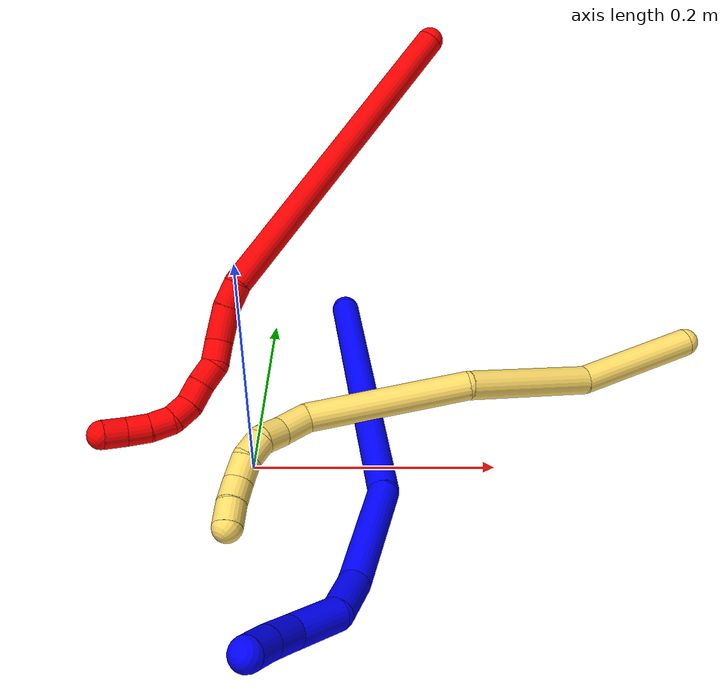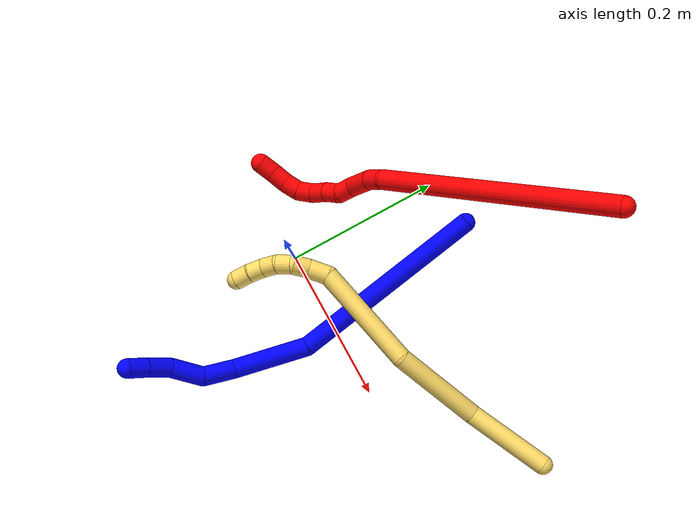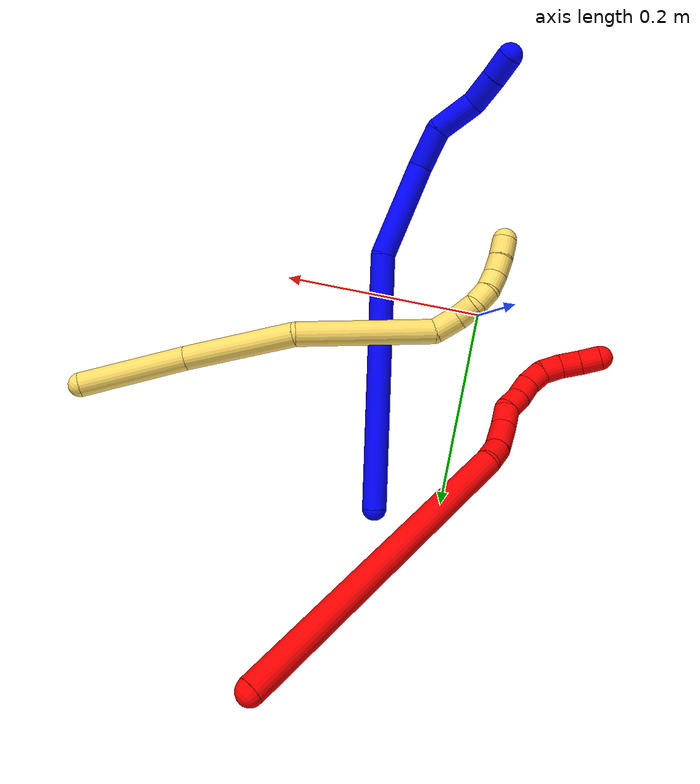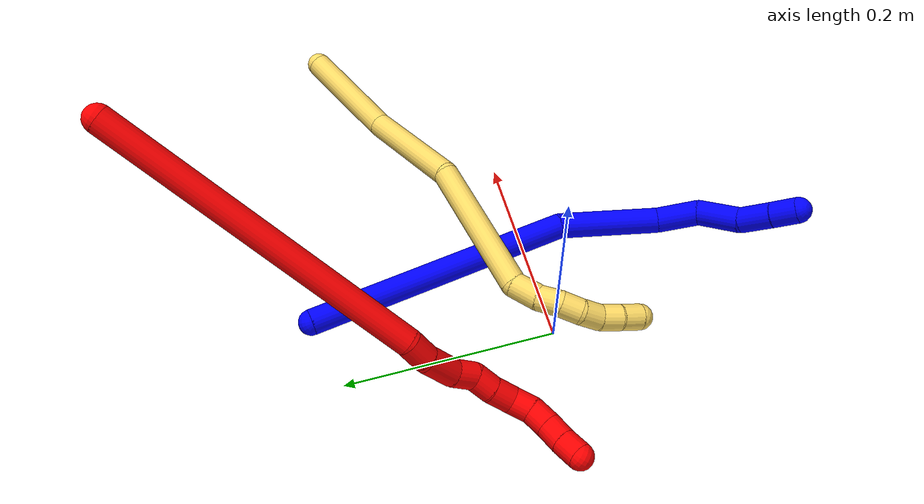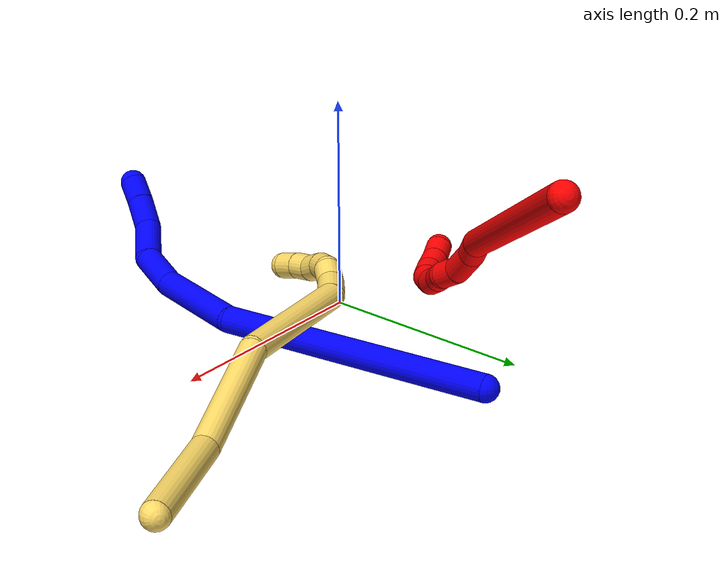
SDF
<sdf version="1.7">
 <world name="default">
  <model name="bin">
   <static>1</static>
   <link name="bottom">
    <collision name="collision-bottom">
     <pose>0 0 -0.01 0 -0 0</pose>
     <geometry><box><size>0.8 0.6 0.02</size></box></geometry>
     <surface>
      <friction><ode><mu>100</mu><mu2>100</mu2></ode></friction>
      <contact><collide_bitmask>65535</collide_bitmask></contact>
     </surface>
    </collision>
   </link>
   <link name="west_wall">
    <collision name="collision-west_wall">
     <pose>-0.41 0 0.1 0 -0 0</pose>
     <geometry><box><size>0.02 0.6 0.2</size></box></geometry>
     <surface>
      <friction><ode><mu>100</mu><mu2>100</mu2></ode></friction>
      <contact><collide_bitmask>65535</collide_bitmask></contact>
     </surface>
    </collision>
   </link>
   <link name="east_wall">
    <collision name="collision-east_wall">
     <pose>0.41 0 0.1 0 -0 0</pose>
     <geometry><box><size>0.02 0.6 0.2</size></box></geometry>
     <surface>
      <friction><ode><mu>100</mu><mu2>100</mu2></ode></friction>
      <contact><collide_bitmask>65535</collide_bitmask></contact>
     </surface>
    </collision>
   </link>
   <link name="south_wall">
    <collision name="collision-south_wall">
     <pose>0 -0.31 0.1 0 -0 0</pose>
     <geometry><box><size>0.8 0.02 0.2</size></box></geometry>
     <surface>
      <friction><ode><mu>100</mu><mu2>100</mu2></ode></friction>
      <contact><collide_bitmask>65535</collide_bitmask></contact>
     </surface>
    </collision>
   </link>
   <link name="north_wall">
    <collision name="collision-north_wall">
     <pose>0 0.31 0.1 0 -0 0</pose>
     <geometry><box><size>0.8 0.02 0.2</size></box></geometry>
     <surface>
      <friction><ode><mu>100</mu><mu2>100</mu2></ode></friction>
      <contact><collide_bitmask>65535</collide_bitmask></contact>
     </surface>
    </collision>
   </link>
  </model>
  <model name="1">
   <static>0</static>
   <link name="1">
    <collision name="collision-cylinder-e_1_1_4">
     <pose>0.028502 -0.117273 0.049514 1.17129 0.220272 0.14643</pose>
     <geometry><cylinder><radius>0.0125</radius><length>0.260898</length></cylinder></geometry>
     <surface>
      <friction><ode><mu>1.16</mu><mu2>1.16</mu2><slip1>0</slip1><slip2>0</slip2></ode></friction>
      <contact><ode><kp>1e+06</kp><kd>1</kd><max_vel>0</max_vel><min_depth>0.001</min_depth></ode></contact>
     </surface>
    </collision>
    <visual name="visual-cylinder-e_1_1_4">
     <pose>0.028502 -0.117273 0.049514 1.17129 0.220272 0.14643</pose>
     <geometry><cylinder><radius>0.0125</radius><length>0.260898</length></cylinder></geometry>
     <material><ambient>0 0 1 1</ambient></material>
    </visual>
    <collision name="collision-cylinder-e_2_4_5">
     <pose>0.052084 -0.27544 0.125671 0.993369 -0.10047 -0.054488</pose>
     <geometry><cylinder><radius>0.0125</radius><length>0.098111</length></cylinder></geometry>
     <surface>
      <friction><ode><mu>1.16</mu><mu2>1.16</mu2><slip1>0</slip1><slip2>0</slip2></ode></friction>
      <contact><ode><kp>1e+06</kp><kd>1</kd><max_vel>0</max_vel><min_depth>0.001</min_depth></ode></contact>
     </surface>
    </collision>
    <visual name="visual-cylinder-e_2_4_5">
     <pose>0.052084 -0.27544 0.125671 0.993369 -0.10047 -0.054488</pose>
     <geometry><cylinder><radius>0.0125</radius><length>0.098111</length></cylinder></geometry>
     <material><ambient>0 0 1 1</ambient></material>
    </visual>
    <collision name="collision-cylinder-e_3_5_6">
     <pose>0.04717 -0.329836 0.16795 0.712247 0.000265 9.9e-05</pose>
     <geometry><cylinder><radius>0.0125</radius><length>0.041316</length></cylinder></geometry>
     <surface>
      <friction><ode><mu>1.16</mu><mu2>1.16</mu2><slip1>0</slip1><slip2>0</slip2></ode></friction>
      <contact><ode><kp>1e+06</kp><kd>1</kd><max_vel>0</max_vel><min_depth>0.001</min_depth></ode></contact>
     </surface>
    </collision>
    <visual name="visual-cylinder-e_3_5_6">
     <pose>0.04717 -0.329836 0.16795 0.712247 0.000265 9.9e-05</pose>
     <geometry><cylinder><radius>0.0125</radius><length>0.041316</length></cylinder></geometry>
     <material><ambient>0 0 1 1</ambient></material>
    </visual>
    <collision name="collision-cylinder-e_4_6_7">
     <pose>0.039185 -0.350615 0.202302 0.370893 -0.378681 -0.071872</pose>
     <geometry><cylinder><radius>0.0125</radius><length>0.043225</length></cylinder></geometry>
     <surface>
      <friction><ode><mu>1.16</mu><mu2>1.16</mu2><slip1>0</slip1><slip2>0</slip2></ode></friction>
      <contact><ode><kp>1e+06</kp><kd>1</kd><max_vel>0</max_vel><min_depth>0.001</min_depth></ode></contact>
     </surface>
    </collision>
    <visual name="visual-cylinder-e_4_6_7">
     <pose>0.039185 -0.350615 0.202302 0.370893 -0.378681 -0.071872</pose>
     <geometry><cylinder><radius>0.0125</radius><length>0.043225</length></cylinder></geometry>
     <material><ambient>0 0 1 1</ambient></material>
    </visual>
    <collision name="collision-cylinder-e_5_7_8">
     <pose>0.030592 -0.363217 0.235863 0.344285 -0.038195 -0.006642</pose>
     <geometry><cylinder><radius>0.0125</radius><length>0.031564</length></cylinder></geometry>
     <surface>
      <friction><ode><mu>1.16</mu><mu2>1.16</mu2><slip1>0</slip1><slip2>0</slip2></ode></friction>
      <contact><ode><kp>1e+06</kp><kd>1</kd><max_vel>0</max_vel><min_depth>0.001</min_depth></ode></contact>
     </surface>
    </collision>
    <visual name="visual-cylinder-e_5_7_8">
     <pose>0.030592 -0.363217 0.235863 0.344285 -0.038195 -0.006642</pose>
     <geometry><cylinder><radius>0.0125</radius><length>0.031564</length></cylinder></geometry>
     <material><ambient>0 0 1 1</ambient></material>
    </visual>
    <collision name="collision-cylinder-e_6_8_2">
     <pose>0.029752 -0.373361 0.262176 0.397974 -0.019114 -0.003855</pose>
     <geometry><cylinder><radius>0.0125</radius><length>0.024885</length></cylinder></geometry>
     <surface>
      <friction><ode><mu>1.16</mu><mu2>1.16</mu2><slip1>0</slip1><slip2>0</slip2></ode></friction>
      <contact><ode><kp>1e+06</kp><kd>1</kd><max_vel>0</max_vel><min_depth>0.001</min_depth></ode></contact>
     </surface>
    </collision>
    <visual name="visual-cylinder-e_6_8_2">
     <pose>0.029752 -0.373361 0.262176 0.397974 -0.019114 -0.003855</pose>
     <geometry><cylinder><radius>0.0125</radius><length>0.024885</length></cylinder></geometry>
     <material><ambient>0 0 1 1</ambient></material>
    </visual>
    <collision name="collision-sphere-2">
     <pose>0.029514 -0.378182 0.273645 0 -0 0</pose>
     <geometry><sphere><radius>0.0125</radius></sphere></geometry>
     <surface>
      <friction><ode><mu>1.16</mu><mu2>1.16</mu2><slip1>0</slip1><slip2>0</slip2></ode></friction>
      <contact><ode><kp>1e+06</kp><kd>1</kd><max_vel>0</max_vel><min_depth>0.001</min_depth></ode></contact>
     </surface>
    </collision>
    <visual name="visual-sphere-2">
     <pose>0.029514 -0.378182 0.273645 0 -0 0</pose>
     <geometry><sphere><radius>0.0125</radius></sphere></geometry>
     <material><ambient>0 0 1 1</ambient></material>
    </visual>
    <collision name="collision-sphere-4">
     <pose>0.057005 -0.234545 0.099028 0 -0 0</pose>
     <geometry><sphere><radius>0.0125</radius></sphere></geometry>
     <surface>
      <friction><ode><mu>1.16</mu><mu2>1.16</mu2><slip1>0</slip1><slip2>0</slip2></ode></friction>
      <contact><ode><kp>1e+06</kp><kd>1</kd><max_vel>0</max_vel><min_depth>0.001</min_depth></ode></contact>
     </surface>
    </collision>
    <visual name="visual-sphere-4">
     <pose>0.057005 -0.234545 0.099028 0 -0 0</pose>
     <geometry><sphere><radius>0.0125</radius></sphere></geometry>
     <material><ambient>0 0 1 1</ambient></material>
    </visual>
    <collision name="collision-sphere-1">
     <geometry><sphere><radius>0.0125</radius></sphere></geometry>
     <surface>
      <friction><ode><mu>1.16</mu><mu2>1.16</mu2><slip1>0</slip1><slip2>0</slip2></ode></friction>
      <contact><ode><kp>1e+06</kp><kd>1</kd><max_vel>0</max_vel><min_depth>0.001</min_depth></ode></contact>
     </surface>
    </collision>
    <visual name="visual-sphere-1">
     <geometry><sphere><radius>0.0125</radius></sphere></geometry>
     <material><ambient>0 0 1 1</ambient></material>
    </visual>
    <collision name="collision-sphere-8">
     <pose>0.02999 -0.36854 0.250708 0 -0 0</pose>
     <geometry><sphere><radius>0.0125</radius></sphere></geometry>
     <surface>
      <friction><ode><mu>1.16</mu><mu2>1.16</mu2><slip1>0</slip1><slip2>0</slip2></ode></friction>
      <contact><ode><kp>1e+06</kp><kd>1</kd><max_vel>0</max_vel><min_depth>0.001</min_depth></ode></contact>
     </surface>
    </collision>
    <visual name="visual-sphere-8">
     <pose>0.02999 -0.36854 0.250708 0 -0 0</pose>
     <geometry><sphere><radius>0.0125</radius></sphere></geometry>
     <material><ambient>0 0 1 1</ambient></material>
    </visual>
    <collision name="collision-sphere-5">
     <pose>0.047164 -0.316335 0.152314 0 -0 0</pose>
     <geometry><sphere><radius>0.0125</radius></sphere></geometry>
     <surface>
      <friction><ode><mu>1.16</mu><mu2>1.16</mu2><slip1>0</slip1><slip2>0</slip2></ode></friction>
      <contact><ode><kp>1e+06</kp><kd>1</kd><max_vel>0</max_vel><min_depth>0.001</min_depth></ode></contact>
     </surface>
    </collision>
    <visual name="visual-sphere-5">
     <pose>0.047164 -0.316335 0.152314 0 -0 0</pose>
     <geometry><sphere><radius>0.0125</radius></sphere></geometry>
     <material><ambient>0 0 1 1</ambient></material>
    </visual>
    <collision name="collision-sphere-6">
     <pose>0.047175 -0.343337 0.183586 0 -0 0</pose>
     <geometry><sphere><radius>0.0125</radius></sphere></geometry>
     <surface>
      <friction><ode><mu>1.16</mu><mu2>1.16</mu2><slip1>0</slip1><slip2>0</slip2></ode></friction>
      <contact><ode><kp>1e+06</kp><kd>1</kd><max_vel>0</max_vel><min_depth>0.001</min_depth></ode></contact>
     </surface>
    </collision>
    <visual name="visual-sphere-6">
     <pose>0.047175 -0.343337 0.183586 0 -0 0</pose>
     <geometry><sphere><radius>0.0125</radius></sphere></geometry>
     <material><ambient>0 0 1 1</ambient></material>
    </visual>
    <collision name="collision-sphere-7">
     <pose>0.031195 -0.357894 0.221018 0 -0 0</pose>
     <geometry><sphere><radius>0.0125</radius></sphere></geometry>
     <surface>
      <friction><ode><mu>1.16</mu><mu2>1.16</mu2><slip1>0</slip1><slip2>0</slip2></ode></friction>
      <contact><ode><kp>1e+06</kp><kd>1</kd><max_vel>0</max_vel><min_depth>0.001</min_depth></ode></contact>
     </surface>
    </collision>
    <visual name="visual-sphere-7">
     <pose>0.031195 -0.357894 0.221018 0 -0 0</pose>
     <geometry><sphere><radius>0.0125</radius></sphere></geometry>
     <material><ambient>0 0 1 1</ambient></material>
    </visual>
    <inertial>
     <pose>0.03579 -0.214318 0.109801 0 -0 0</pose>
     <mass>0.5</mass>
     <inertia>
      <ixx>0.001751</ixx>
      <ixy>0</ixy>
      <ixz>0</ixz>
      <iyy>0.000859</iyy>
      <iyz>0</iyz>
      <izz>0.001126</izz>
     </inertia>
    </inertial>
   </link>
   <pose>0.067109 0.216302 0.011496 0.522264 -0.500517 -0.090772</pose>
  </model>
  <model name="2">
   <static>0</static>
   <link name="2">
    <collision name="collision-cylinder-e_1_1_4">
     <pose>-0.011908 -0.005031 -0.149684 3.10799 -0.079341 -2.34072</pose>
     <geometry><cylinder><radius>0.0125</radius><length>0.300483</length></cylinder></geometry>
     <surface>
      <friction><ode><mu>1.16</mu><mu2>1.16</mu2><slip1>0</slip1><slip2>0</slip2></ode></friction>
      <contact><ode><kp>1e+06</kp><kd>1</kd><max_vel>0</max_vel><min_depth>0.001</min_depth></ode></contact>
     </surface>
    </collision>
    <visual name="visual-cylinder-e_1_1_4">
     <pose>-0.011908 -0.005031 -0.149684 3.10799 -0.079341 -2.34072</pose>
     <geometry><cylinder><radius>0.0125</radius><length>0.300483</length></cylinder></geometry>
     <material><ambient>1 0 0 1</ambient></material>
    </visual>
    <collision name="collision-cylinder-e_2_4_5">
     <pose>-0.027116 -0.007721 -0.31012 -2.92715 -0.291436 1.87599</pose>
     <geometry><cylinder><radius>0.0125</radius><length>0.022976</length></cylinder></geometry>
     <surface>
      <friction><ode><mu>1.16</mu><mu2>1.16</mu2><slip1>0</slip1><slip2>0</slip2></ode></friction>
      <contact><ode><kp>1e+06</kp><kd>1</kd><max_vel>0</max_vel><min_depth>0.001</min_depth></ode></contact>
     </surface>
    </collision>
    <visual name="visual-cylinder-e_2_4_5">
     <pose>-0.027116 -0.007721 -0.31012 -2.92715 -0.291436 1.87599</pose>
     <geometry><cylinder><radius>0.0125</radius><length>0.022976</length></cylinder></geometry>
     <material><ambient>1 0 0 1</ambient></material>
    </visual>
    <collision name="collision-cylinder-e_3_5_6">
     <pose>-0.032703 0.001153 -0.335614 -2.72451 -0.140797 0.6433</pose>
     <geometry><cylinder><radius>0.0125</radius><length>0.032572</length></cylinder></geometry>
     <surface>
      <friction><ode><mu>1.16</mu><mu2>1.16</mu2><slip1>0</slip1><slip2>0</slip2></ode></friction>
      <contact><ode><kp>1e+06</kp><kd>1</kd><max_vel>0</max_vel><min_depth>0.001</min_depth></ode></contact>
     </surface>
    </collision>
    <visual name="visual-cylinder-e_3_5_6">
     <pose>-0.032703 0.001153 -0.335614 -2.72451 -0.140797 0.6433</pose>
     <geometry><cylinder><radius>0.0125</radius><length>0.032572</length></cylinder></geometry>
     <material><ambient>1 0 0 1</ambient></material>
    </visual>
    <collision name="collision-cylinder-e_4_6_7">
     <pose>-0.032986 0.011856 -0.360003 -2.73345 0.188266 -0.856005</pose>
     <geometry><cylinder><radius>0.0125</radius><length>0.021396</length></cylinder></geometry>
     <surface>
      <friction><ode><mu>1.16</mu><mu2>1.16</mu2><slip1>0</slip1><slip2>0</slip2></ode></friction>
      <contact><ode><kp>1e+06</kp><kd>1</kd><max_vel>0</max_vel><min_depth>0.001</min_depth></ode></contact>
     </surface>
    </collision>
    <visual name="visual-cylinder-e_4_6_7">
     <pose>-0.032986 0.011856 -0.360003 -2.73345 0.188266 -0.856005</pose>
     <geometry><cylinder><radius>0.0125</radius><length>0.021396</length></cylinder></geometry>
     <material><ambient>1 0 0 1</ambient></material>
    </visual>
    <collision name="collision-cylinder-e_5_7_8">
     <pose>-0.0322 0.016109 -0.379752 -3.13346 -0.119807 3.00626</pose>
     <geometry><cylinder><radius>0.0125</radius><length>0.020354</length></cylinder></geometry>
     <surface>
      <friction><ode><mu>1.16</mu><mu2>1.16</mu2><slip1>0</slip1><slip2>0</slip2></ode></friction>
      <contact><ode><kp>1e+06</kp><kd>1</kd><max_vel>0</max_vel><min_depth>0.001</min_depth></ode></contact>
     </surface>
    </collision>
    <visual name="visual-cylinder-e_5_7_8">
     <pose>-0.0322 0.016109 -0.379752 -3.13346 -0.119807 3.00626</pose>
     <geometry><cylinder><radius>0.0125</radius><length>0.020354</length></cylinder></geometry>
     <material><ambient>1 0 0 1</ambient></material>
    </visual>
    <collision name="collision-cylinder-e_6_8_9">
     <pose>-0.033394 0.017473 -0.400506 -3.02182 0.002101 -0.035037</pose>
     <geometry><cylinder><radius>0.0125</radius><length>0.021454</length></cylinder></geometry>
     <surface>
      <friction><ode><mu>1.16</mu><mu2>1.16</mu2><slip1>0</slip1><slip2>0</slip2></ode></friction>
      <contact><ode><kp>1e+06</kp><kd>1</kd><max_vel>0</max_vel><min_depth>0.001</min_depth></ode></contact>
     </surface>
    </collision>
    <visual name="visual-cylinder-e_6_8_9">
     <pose>-0.033394 0.017473 -0.400506 -3.02182 0.002101 -0.035037</pose>
     <geometry><cylinder><radius>0.0125</radius><length>0.021454</length></cylinder></geometry>
     <material><ambient>1 0 0 1</ambient></material>
    </visual>
    <collision name="collision-cylinder-e_7_9_10">
     <pose>-0.03161 0.016421 -0.420738 2.90268 0.176786 1.27204</pose>
     <geometry><cylinder><radius>0.0125</radius><length>0.020036</length></cylinder></geometry>
     <surface>
      <friction><ode><mu>1.16</mu><mu2>1.16</mu2><slip1>0</slip1><slip2>0</slip2></ode></friction>
      <contact><ode><kp>1e+06</kp><kd>1</kd><max_vel>0</max_vel><min_depth>0.001</min_depth></ode></contact>
     </surface>
    </collision>
    <visual name="visual-cylinder-e_7_9_10">
     <pose>-0.03161 0.016421 -0.420738 2.90268 0.176786 1.27204</pose>
     <geometry><cylinder><radius>0.0125</radius><length>0.020036</length></cylinder></geometry>
     <material><ambient>1 0 0 1</ambient></material>
    </visual>
    <collision name="collision-cylinder-e_8_10_11">
     <pose>-0.029631 0.008314 -0.438485 2.52622 0.021646 0.068091</pose>
     <geometry><cylinder><radius>0.0125</radius><length>0.020006</length></cylinder></geometry>
     <surface>
      <friction><ode><mu>1.16</mu><mu2>1.16</mu2><slip1>0</slip1><slip2>0</slip2></ode></friction>
      <contact><ode><kp>1e+06</kp><kd>1</kd><max_vel>0</max_vel><min_depth>0.001</min_depth></ode></contact>
     </surface>
    </collision>
    <visual name="visual-cylinder-e_8_10_11">
     <pose>-0.029631 0.008314 -0.438485 2.52622 0.021646 0.068091</pose>
     <geometry><cylinder><radius>0.0125</radius><length>0.020006</length></cylinder></geometry>
     <material><ambient>1 0 0 1</ambient></material>
    </visual>
    <collision name="collision-cylinder-e_9_11_12">
     <pose>-0.02911 -0.004717 -0.453766 2.34625 0.030015 0.07143</pose>
     <geometry><cylinder><radius>0.0125</radius><length>0.020336</length></cylinder></geometry>
     <surface>
      <friction><ode><mu>1.16</mu><mu2>1.16</mu2><slip1>0</slip1><slip2>0</slip2></ode></friction>
      <contact><ode><kp>1e+06</kp><kd>1</kd><max_vel>0</max_vel><min_depth>0.001</min_depth></ode></contact>
     </surface>
    </collision>
    <visual name="visual-cylinder-e_9_11_12">
     <pose>-0.02911 -0.004717 -0.453766 2.34625 0.030015 0.07143</pose>
     <geometry><cylinder><radius>0.0125</radius><length>0.020336</length></cylinder></geometry>
     <material><ambient>1 0 0 1</ambient></material>
    </visual>
    <collision name="collision-cylinder-e_10_12_2">
     <pose>-0.027441 -0.019417 -0.467712 2.31342 0.134193 0.30344</pose>
     <geometry><cylinder><radius>0.0125</radius><length>0.020387</length></cylinder></geometry>
     <surface>
      <friction><ode><mu>1.16</mu><mu2>1.16</mu2><slip1>0</slip1><slip2>0</slip2></ode></friction>
      <contact><ode><kp>1e+06</kp><kd>1</kd><max_vel>0</max_vel><min_depth>0.001</min_depth></ode></contact>
     </surface>
    </collision>
    <visual name="visual-cylinder-e_10_12_2">
     <pose>-0.027441 -0.019417 -0.467712 2.31342 0.134193 0.30344</pose>
     <geometry><cylinder><radius>0.0125</radius><length>0.020387</length></cylinder></geometry>
     <material><ambient>1 0 0 1</ambient></material>
    </visual>
    <collision name="collision-sphere-2">
     <pose>-0.026077 -0.026859 -0.474543 0 -0 0</pose>
     <geometry><sphere><radius>0.0125</radius></sphere></geometry>
     <surface>
      <friction><ode><mu>1.16</mu><mu2>1.16</mu2><slip1>0</slip1><slip2>0</slip2></ode></friction>
      <contact><ode><kp>1e+06</kp><kd>1</kd><max_vel>0</max_vel><min_depth>0.001</min_depth></ode></contact>
     </surface>
    </collision>
    <visual name="visual-sphere-2">
     <pose>-0.026077 -0.026859 -0.474543 0 -0 0</pose>
     <geometry><sphere><radius>0.0125</radius></sphere></geometry>
     <material><ambient>1 0 0 1</ambient></material>
    </visual>
    <collision name="collision-sphere-12">
     <pose>-0.028805 -0.011975 -0.460881 0 -0 0</pose>
     <geometry><sphere><radius>0.0125</radius></sphere></geometry>
     <surface>
      <friction><ode><mu>1.16</mu><mu2>1.16</mu2><slip1>0</slip1><slip2>0</slip2></ode></friction>
      <contact><ode><kp>1e+06</kp><kd>1</kd><max_vel>0</max_vel><min_depth>0.001</min_depth></ode></contact>
     </surface>
    </collision>
    <visual name="visual-sphere-12">
     <pose>-0.028805 -0.011975 -0.460881 0 -0 0</pose>
     <geometry><sphere><radius>0.0125</radius></sphere></geometry>
     <material><ambient>1 0 0 1</ambient></material>
    </visual>
    <collision name="collision-sphere-11">
     <pose>-0.029415 0.002541 -0.446651 0 -0 0</pose>
     <geometry><sphere><radius>0.0125</radius></sphere></geometry>
     <surface>
      <friction><ode><mu>1.16</mu><mu2>1.16</mu2><slip1>0</slip1><slip2>0</slip2></ode></friction>
      <contact><ode><kp>1e+06</kp><kd>1</kd><max_vel>0</max_vel><min_depth>0.001</min_depth></ode></contact>
     </surface>
    </collision>
    <visual name="visual-sphere-11">
     <pose>-0.029415 0.002541 -0.446651 0 -0 0</pose>
     <geometry><sphere><radius>0.0125</radius></sphere></geometry>
     <material><ambient>1 0 0 1</ambient></material>
    </visual>
    <collision name="collision-sphere-10">
     <pose>-0.029848 0.014087 -0.430319 0 -0 0</pose>
     <geometry><sphere><radius>0.0125</radius></sphere></geometry>
     <surface>
      <friction><ode><mu>1.16</mu><mu2>1.16</mu2><slip1>0</slip1><slip2>0</slip2></ode></friction>
      <contact><ode><kp>1e+06</kp><kd>1</kd><max_vel>0</max_vel><min_depth>0.001</min_depth></ode></contact>
     </surface>
    </collision>
    <visual name="visual-sphere-10">
     <pose>-0.029848 0.014087 -0.430319 0 -0 0</pose>
     <geometry><sphere><radius>0.0125</radius></sphere></geometry>
     <material><ambient>1 0 0 1</ambient></material>
    </visual>
    <collision name="collision-sphere-9">
     <pose>-0.033372 0.018755 -0.411156 0 -0 0</pose>
     <geometry><sphere><radius>0.0125</radius></sphere></geometry>
     <surface>
      <friction><ode><mu>1.16</mu><mu2>1.16</mu2><slip1>0</slip1><slip2>0</slip2></ode></friction>
      <contact><ode><kp>1e+06</kp><kd>1</kd><max_vel>0</max_vel><min_depth>0.001</min_depth></ode></contact>
     </surface>
    </collision>
    <visual name="visual-sphere-9">
     <pose>-0.033372 0.018755 -0.411156 0 -0 0</pose>
     <geometry><sphere><radius>0.0125</radius></sphere></geometry>
     <material><ambient>1 0 0 1</ambient></material>
    </visual>
    <collision name="collision-sphere-4">
     <pose>-0.023816 -0.010063 -0.299368 0 -0 0</pose>
     <geometry><sphere><radius>0.0125</radius></sphere></geometry>
     <surface>
      <friction><ode><mu>1.16</mu><mu2>1.16</mu2><slip1>0</slip1><slip2>0</slip2></ode></friction>
      <contact><ode><kp>1e+06</kp><kd>1</kd><max_vel>0</max_vel><min_depth>0.001</min_depth></ode></contact>
     </surface>
    </collision>
    <visual name="visual-sphere-4">
     <pose>-0.023816 -0.010063 -0.299368 0 -0 0</pose>
     <geometry><sphere><radius>0.0125</radius></sphere></geometry>
     <material><ambient>1 0 0 1</ambient></material>
    </visual>
    <collision name="collision-sphere-1">
     <geometry><sphere><radius>0.0125</radius></sphere></geometry>
     <surface>
      <friction><ode><mu>1.16</mu><mu2>1.16</mu2><slip1>0</slip1><slip2>0</slip2></ode></friction>
      <contact><ode><kp>1e+06</kp><kd>1</kd><max_vel>0</max_vel><min_depth>0.001</min_depth></ode></contact>
     </surface>
    </collision>
    <visual name="visual-sphere-1">
     <geometry><sphere><radius>0.0125</radius></sphere></geometry>
     <material><ambient>1 0 0 1</ambient></material>
    </visual>
    <collision name="collision-sphere-8">
     <pose>-0.033417 0.016191 -0.389855 0 -0 0</pose>
     <geometry><sphere><radius>0.0125</radius></sphere></geometry>
     <surface>
      <friction><ode><mu>1.16</mu><mu2>1.16</mu2><slip1>0</slip1><slip2>0</slip2></ode></friction>
      <contact><ode><kp>1e+06</kp><kd>1</kd><max_vel>0</max_vel><min_depth>0.001</min_depth></ode></contact>
     </surface>
    </collision>
    <visual name="visual-sphere-8">
     <pose>-0.033417 0.016191 -0.389855 0 -0 0</pose>
     <geometry><sphere><radius>0.0125</radius></sphere></geometry>
     <material><ambient>1 0 0 1</ambient></material>
    </visual>
    <collision name="collision-sphere-5">
     <pose>-0.030417 -0.005379 -0.320872 0 -0 0</pose>
     <geometry><sphere><radius>0.0125</radius></sphere></geometry>
     <surface>
      <friction><ode><mu>1.16</mu><mu2>1.16</mu2><slip1>0</slip1><slip2>0</slip2></ode></friction>
      <contact><ode><kp>1e+06</kp><kd>1</kd><max_vel>0</max_vel><min_depth>0.001</min_depth></ode></contact>
     </surface>
    </collision>
    <visual name="visual-sphere-5">
     <pose>-0.030417 -0.005379 -0.320872 0 -0 0</pose>
     <geometry><sphere><radius>0.0125</radius></sphere></geometry>
     <material><ambient>1 0 0 1</ambient></material>
    </visual>
    <collision name="collision-sphere-6">
     <pose>-0.034988 0.007685 -0.350357 0 -0 0</pose>
     <geometry><sphere><radius>0.0125</radius></sphere></geometry>
     <surface>
      <friction><ode><mu>1.16</mu><mu2>1.16</mu2><slip1>0</slip1><slip2>0</slip2></ode></friction>
      <contact><ode><kp>1e+06</kp><kd>1</kd><max_vel>0</max_vel><min_depth>0.001</min_depth></ode></contact>
     </surface>
    </collision>
    <visual name="visual-sphere-6">
     <pose>-0.034988 0.007685 -0.350357 0 -0 0</pose>
     <geometry><sphere><radius>0.0125</radius></sphere></geometry>
     <material><ambient>1 0 0 1</ambient></material>
    </visual>
    <collision name="collision-sphere-7">
     <pose>-0.030984 0.016027 -0.369648 0 -0 0</pose>
     <geometry><sphere><radius>0.0125</radius></sphere></geometry>
     <surface>
      <friction><ode><mu>1.16</mu><mu2>1.16</mu2><slip1>0</slip1><slip2>0</slip2></ode></friction>
      <contact><ode><kp>1e+06</kp><kd>1</kd><max_vel>0</max_vel><min_depth>0.001</min_depth></ode></contact>
     </surface>
    </collision>
    <visual name="visual-sphere-7">
     <pose>-0.030984 0.016027 -0.369648 0 -0 0</pose>
     <geometry><sphere><radius>0.0125</radius></sphere></geometry>
     <material><ambient>1 0 0 1</ambient></material>
    </visual>
    <inertial>
     <pose>-0.019443 -0.001383 -0.246049 0 -0 0</pose>
     <mass>0.5</mass>
     <inertia>
      <ixx>-0.003192</ixx>
      <ixy>0</ixy>
      <ixz>0</ixz>
      <iyy>-4.5e-05</iyy>
      <iyz>0</iyz>
      <izz>0.00022</izz>
     </inertia>
    </inertial>
   </link>
   <pose>0.149463 0.334585 0.242595 -0.890028 -0.7324 -1.13101</pose>
  </model>
  <model name="5">
   <static>0</static>
   <link name="5">
    <collision name="collision-cylinder-e_1_1_4">
     <pose>-0.032184 0.004297 0.044302 -0.096684 -0.626054 0.031315</pose>
     <geometry><cylinder><radius>0.0125</radius><length>0.109853</length></cylinder></geometry>
     <surface>
      <friction><ode><mu>1.16</mu><mu2>1.16</mu2><slip1>0</slip1><slip2>0</slip2></ode></friction>
      <contact><ode><kp>1e+06</kp><kd>1</kd><max_vel>0</max_vel><min_depth>0.001</min_depth></ode></contact>
     </surface>
    </collision>
    <visual name="visual-cylinder-e_1_1_4">
     <pose>-0.032184 0.004297 0.044302 -0.096684 -0.626054 0.031315</pose>
     <geometry><cylinder><radius>0.0125</radius><length>0.109853</length></cylinder></geometry>
     <material><ambient>1 0.858824 0.4 1</ambient></material>
    </visual>
    <collision name="collision-cylinder-e_2_4_5">
     <pose>-0.101604 0.03099 0.129755 -0.498408 -0.671528 0.177161</pose>
     <geometry><cylinder><radius>0.0125</radius><length>0.119692</length></cylinder></geometry>
     <surface>
      <friction><ode><mu>1.16</mu><mu2>1.16</mu2><slip1>0</slip1><slip2>0</slip2></ode></friction>
      <contact><ode><kp>1e+06</kp><kd>1</kd><max_vel>0</max_vel><min_depth>0.001</min_depth></ode></contact>
     </surface>
    </collision>
    <visual name="visual-cylinder-e_2_4_5">
     <pose>-0.101604 0.03099 0.129755 -0.498408 -0.671528 0.177161</pose>
     <geometry><cylinder><radius>0.0125</radius><length>0.119692</length></cylinder></geometry>
     <material><ambient>1 0.858824 0.4 1</ambient></material>
    </visual>
    <collision name="collision-cylinder-e_3_5_6">
     <pose>-0.191515 0.055175 0.217133 -0.038676 -0.850161 0.017509</pose>
     <geometry><cylinder><radius>0.0125</radius><length>0.140212</length></cylinder></geometry>
     <surface>
      <friction><ode><mu>1.16</mu><mu2>1.16</mu2><slip1>0</slip1><slip2>0</slip2></ode></friction>
      <contact><ode><kp>1e+06</kp><kd>1</kd><max_vel>0</max_vel><min_depth>0.001</min_depth></ode></contact>
     </surface>
    </collision>
    <visual name="visual-cylinder-e_3_5_6">
     <pose>-0.191515 0.055175 0.217133 -0.038676 -0.850161 0.017509</pose>
     <geometry><cylinder><radius>0.0125</radius><length>0.140212</length></cylinder></geometry>
     <material><ambient>1 0.858824 0.4 1</ambient></material>
    </visual>
    <collision name="collision-cylinder-e_4_6_7">
     <pose>-0.248973 0.059627 0.275941 -0.20858 -0.355882 0.037644</pose>
     <geometry><cylinder><radius>0.0125</radius><length>0.027443</length></cylinder></geometry>
     <surface>
      <friction><ode><mu>1.16</mu><mu2>1.16</mu2><slip1>0</slip1><slip2>0</slip2></ode></friction>
      <contact><ode><kp>1e+06</kp><kd>1</kd><max_vel>0</max_vel><min_depth>0.001</min_depth></ode></contact>
     </surface>
    </collision>
    <visual name="visual-cylinder-e_4_6_7">
     <pose>-0.248973 0.059627 0.275941 -0.20858 -0.355882 0.037644</pose>
     <geometry><cylinder><radius>0.0125</radius><length>0.027443</length></cylinder></geometry>
     <material><ambient>1 0.858824 0.4 1</ambient></material>
    </visual>
    <collision name="collision-cylinder-e_5_7_8">
     <pose>-0.256201 0.066775 0.297804 -0.450174 -0.23315 0.053614</pose>
     <geometry><cylinder><radius>0.0125</radius><length>0.021187</length></cylinder></geometry>
     <surface>
      <friction><ode><mu>1.16</mu><mu2>1.16</mu2><slip1>0</slip1><slip2>0</slip2></ode></friction>
      <contact><ode><kp>1e+06</kp><kd>1</kd><max_vel>0</max_vel><min_depth>0.001</min_depth></ode></contact>
     </surface>
    </collision>
    <visual name="visual-cylinder-e_5_7_8">
     <pose>-0.256201 0.066775 0.297804 -0.450174 -0.23315 0.053614</pose>
     <geometry><cylinder><radius>0.0125</radius><length>0.021187</length></cylinder></geometry>
     <material><ambient>1 0.858824 0.4 1</ambient></material>
    </visual>
    <collision name="collision-cylinder-e_6_8_9">
     <pose>-0.259188 0.070922 0.317172 0.033451 -0.053329 -0.000892</pose>
     <geometry><cylinder><radius>0.0125</radius><length>0.020215</length></cylinder></geometry>
     <surface>
      <friction><ode><mu>1.16</mu><mu2>1.16</mu2><slip1>0</slip1><slip2>0</slip2></ode></friction>
      <contact><ode><kp>1e+06</kp><kd>1</kd><max_vel>0</max_vel><min_depth>0.001</min_depth></ode></contact>
     </surface>
    </collision>
    <visual name="visual-cylinder-e_6_8_9">
     <pose>-0.259188 0.070922 0.317172 0.033451 -0.053329 -0.000892</pose>
     <geometry><cylinder><radius>0.0125</radius><length>0.020215</length></cylinder></geometry>
     <material><ambient>1 0.858824 0.4 1</ambient></material>
    </visual>
    <collision name="collision-cylinder-e_7_9_10">
     <pose>-0.257742 0.068056 0.337123 0.25092 0.192483 0.02435</pose>
     <geometry><cylinder><radius>0.0125</radius><length>0.020748</length></cylinder></geometry>
     <surface>
      <friction><ode><mu>1.16</mu><mu2>1.16</mu2><slip1>0</slip1><slip2>0</slip2></ode></friction>
      <contact><ode><kp>1e+06</kp><kd>1</kd><max_vel>0</max_vel><min_depth>0.001</min_depth></ode></contact>
     </surface>
    </collision>
    <visual name="visual-cylinder-e_7_9_10">
     <pose>-0.257742 0.068056 0.337123 0.25092 0.192483 0.02435</pose>
     <geometry><cylinder><radius>0.0125</radius><length>0.020748</length></cylinder></geometry>
     <material><ambient>1 0.858824 0.4 1</ambient></material>
    </visual>
    <collision name="collision-cylinder-e_8_10_11">
     <pose>-0.252341 0.065931 0.356567 -0.042004 0.342316 -0.007261</pose>
     <geometry><cylinder><radius>0.0125</radius><length>0.020358</length></cylinder></geometry>
     <surface>
      <friction><ode><mu>1.16</mu><mu2>1.16</mu2><slip1>0</slip1><slip2>0</slip2></ode></friction>
      <contact><ode><kp>1e+06</kp><kd>1</kd><max_vel>0</max_vel><min_depth>0.001</min_depth></ode></contact>
     </surface>
    </collision>
    <visual name="visual-cylinder-e_8_10_11">
     <pose>-0.252341 0.065931 0.356567 -0.042004 0.342316 -0.007261</pose>
     <geometry><cylinder><radius>0.0125</radius><length>0.020358</length></cylinder></geometry>
     <material><ambient>1 0.858824 0.4 1</ambient></material>
    </visual>
    <collision name="collision-cylinder-e_9_11_2">
     <pose>-0.24473 0.065697 0.375364 0.068889 0.426096 0.014908</pose>
     <geometry><cylinder><radius>0.0125</radius><length>0.020291</length></cylinder></geometry>
     <surface>
      <friction><ode><mu>1.16</mu><mu2>1.16</mu2><slip1>0</slip1><slip2>0</slip2></ode></friction>
      <contact><ode><kp>1e+06</kp><kd>1</kd><max_vel>0</max_vel><min_depth>0.001</min_depth></ode></contact>
     </surface>
    </collision>
    <visual name="visual-cylinder-e_9_11_2">
     <pose>-0.24473 0.065697 0.375364 0.068889 0.426096 0.014908</pose>
     <geometry><cylinder><radius>0.0125</radius><length>0.020291</length></cylinder></geometry>
     <material><ambient>1 0.858824 0.4 1</ambient></material>
    </visual>
    <collision name="collision-sphere-2">
     <pose>-0.240537 0.065061 0.38458 0 -0 0</pose>
     <geometry><sphere><radius>0.0125</radius></sphere></geometry>
     <surface>
      <friction><ode><mu>1.16</mu><mu2>1.16</mu2><slip1>0</slip1><slip2>0</slip2></ode></friction>
      <contact><ode><kp>1e+06</kp><kd>1</kd><max_vel>0</max_vel><min_depth>0.001</min_depth></ode></contact>
     </surface>
    </collision>
    <visual name="visual-sphere-2">
     <pose>-0.240537 0.065061 0.38458 0 -0 0</pose>
     <geometry><sphere><radius>0.0125</radius></sphere></geometry>
     <material><ambient>1 0.858824 0.4 1</ambient></material>
    </visual>
    <collision name="collision-sphere-11">
     <pose>-0.248924 0.066333 0.366147 0 -0 0</pose>
     <geometry><sphere><radius>0.0125</radius></sphere></geometry>
     <surface>
      <friction><ode><mu>1.16</mu><mu2>1.16</mu2><slip1>0</slip1><slip2>0</slip2></ode></friction>
      <contact><ode><kp>1e+06</kp><kd>1</kd><max_vel>0</max_vel><min_depth>0.001</min_depth></ode></contact>
     </surface>
    </collision>
    <visual name="visual-sphere-11">
     <pose>-0.248924 0.066333 0.366147 0 -0 0</pose>
     <geometry><sphere><radius>0.0125</radius></sphere></geometry>
     <material><ambient>1 0.858824 0.4 1</ambient></material>
    </visual>
    <collision name="collision-sphere-10">
     <pose>-0.255757 0.065528 0.346987 0 -0 0</pose>
     <geometry><sphere><radius>0.0125</radius></sphere></geometry>
     <surface>
      <friction><ode><mu>1.16</mu><mu2>1.16</mu2><slip1>0</slip1><slip2>0</slip2></ode></friction>
      <contact><ode><kp>1e+06</kp><kd>1</kd><max_vel>0</max_vel><min_depth>0.001</min_depth></ode></contact>
     </surface>
    </collision>
    <visual name="visual-sphere-10">
     <pose>-0.255757 0.065528 0.346987 0 -0 0</pose>
     <geometry><sphere><radius>0.0125</radius></sphere></geometry>
     <material><ambient>1 0.858824 0.4 1</ambient></material>
    </visual>
    <collision name="collision-sphere-9">
     <pose>-0.259727 0.070585 0.327259 0 -0 0</pose>
     <geometry><sphere><radius>0.0125</radius></sphere></geometry>
     <surface>
      <friction><ode><mu>1.16</mu><mu2>1.16</mu2><slip1>0</slip1><slip2>0</slip2></ode></friction>
      <contact><ode><kp>1e+06</kp><kd>1</kd><max_vel>0</max_vel><min_depth>0.001</min_depth></ode></contact>
     </surface>
    </collision>
    <visual name="visual-sphere-9">
     <pose>-0.259727 0.070585 0.327259 0 -0 0</pose>
     <geometry><sphere><radius>0.0125</radius></sphere></geometry>
     <material><ambient>1 0.858824 0.4 1</ambient></material>
    </visual>
    <collision name="collision-sphere-4">
     <pose>-0.064369 0.008593 0.088603 0 -0 0</pose>
     <geometry><sphere><radius>0.0125</radius></sphere></geometry>
     <surface>
      <friction><ode><mu>1.16</mu><mu2>1.16</mu2><slip1>0</slip1><slip2>0</slip2></ode></friction>
      <contact><ode><kp>1e+06</kp><kd>1</kd><max_vel>0</max_vel><min_depth>0.001</min_depth></ode></contact>
     </surface>
    </collision>
    <visual name="visual-sphere-4">
     <pose>-0.064369 0.008593 0.088603 0 -0 0</pose>
     <geometry><sphere><radius>0.0125</radius></sphere></geometry>
     <material><ambient>1 0.858824 0.4 1</ambient></material>
    </visual>
    <collision name="collision-sphere-1">
     <geometry><sphere><radius>0.0125</radius></sphere></geometry>
     <surface>
      <friction><ode><mu>1.16</mu><mu2>1.16</mu2><slip1>0</slip1><slip2>0</slip2></ode></friction>
      <contact><ode><kp>1e+06</kp><kd>1</kd><max_vel>0</max_vel><min_depth>0.001</min_depth></ode></contact>
     </surface>
    </collision>
    <visual name="visual-sphere-1">
     <geometry><sphere><radius>0.0125</radius></sphere></geometry>
     <material><ambient>1 0.858824 0.4 1</ambient></material>
    </visual>
    <collision name="collision-sphere-8">
     <pose>-0.258649 0.07126 0.307085 0 -0 0</pose>
     <geometry><sphere><radius>0.0125</radius></sphere></geometry>
     <surface>
      <friction><ode><mu>1.16</mu><mu2>1.16</mu2><slip1>0</slip1><slip2>0</slip2></ode></friction>
      <contact><ode><kp>1e+06</kp><kd>1</kd><max_vel>0</max_vel><min_depth>0.001</min_depth></ode></contact>
     </surface>
    </collision>
    <visual name="visual-sphere-8">
     <pose>-0.258649 0.07126 0.307085 0 -0 0</pose>
     <geometry><sphere><radius>0.0125</radius></sphere></geometry>
     <material><ambient>1 0.858824 0.4 1</ambient></material>
    </visual>
    <collision name="collision-sphere-5">
     <pose>-0.138839 0.053386 0.170907 0 -0 0</pose>
     <geometry><sphere><radius>0.0125</radius></sphere></geometry>
     <surface>
      <friction><ode><mu>1.16</mu><mu2>1.16</mu2><slip1>0</slip1><slip2>0</slip2></ode></friction>
      <contact><ode><kp>1e+06</kp><kd>1</kd><max_vel>0</max_vel><min_depth>0.001</min_depth></ode></contact>
     </surface>
    </collision>
    <visual name="visual-sphere-5">
     <pose>-0.138839 0.053386 0.170907 0 -0 0</pose>
     <geometry><sphere><radius>0.0125</radius></sphere></geometry>
     <material><ambient>1 0.858824 0.4 1</ambient></material>
    </visual>
    <collision name="collision-sphere-6">
     <pose>-0.244192 0.056964 0.263358 0 -0 0</pose>
     <geometry><sphere><radius>0.0125</radius></sphere></geometry>
     <surface>
      <friction><ode><mu>1.16</mu><mu2>1.16</mu2><slip1>0</slip1><slip2>0</slip2></ode></friction>
      <contact><ode><kp>1e+06</kp><kd>1</kd><max_vel>0</max_vel><min_depth>0.001</min_depth></ode></contact>
     </surface>
    </collision>
    <visual name="visual-sphere-6">
     <pose>-0.244192 0.056964 0.263358 0 -0 0</pose>
     <geometry><sphere><radius>0.0125</radius></sphere></geometry>
     <material><ambient>1 0.858824 0.4 1</ambient></material>
    </visual>
    <collision name="collision-sphere-7">
     <pose>-0.253754 0.06229 0.288524 0 -0 0</pose>
     <geometry><sphere><radius>0.0125</radius></sphere></geometry>
     <surface>
      <friction><ode><mu>1.16</mu><mu2>1.16</mu2><slip1>0</slip1><slip2>0</slip2></ode></friction>
      <contact><ode><kp>1e+06</kp><kd>1</kd><max_vel>0</max_vel><min_depth>0.001</min_depth></ode></contact>
     </surface>
    </collision>
    <visual name="visual-sphere-7">
     <pose>-0.253754 0.06229 0.288524 0 -0 0</pose>
     <geometry><sphere><radius>0.0125</radius></sphere></geometry>
     <material><ambient>1 0.858824 0.4 1</ambient></material>
    </visual>
    <inertial>
     <pose>-0.151001 0.040979 0.186013 0 -0 0</pose>
     <mass>0.5</mass>
     <inertia>
      <ixx>0.000379</ixx>
      <ixy>0</ixy>
      <ixz>0</ixz>
      <iyy>0.000526</iyy>
      <iyz>0</iyz>
      <izz>0.000295</izz>
     </inertia>
    </inertial>
   </link>
   <pose>0.385774 0.149227 0.020014 1.80153 0.066512 -0.490893</pose>
  </model>
 </world>
</sdf>
